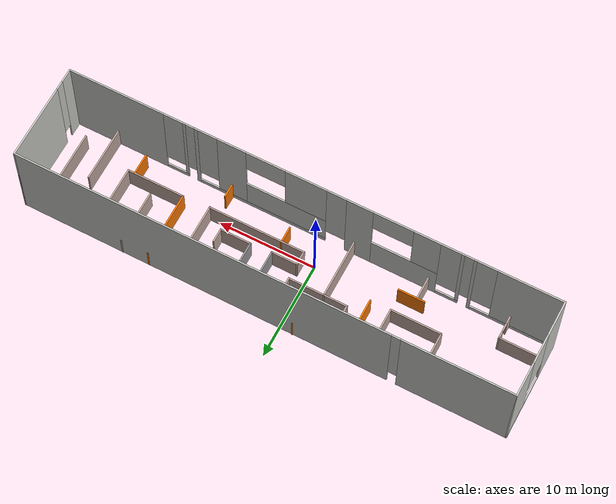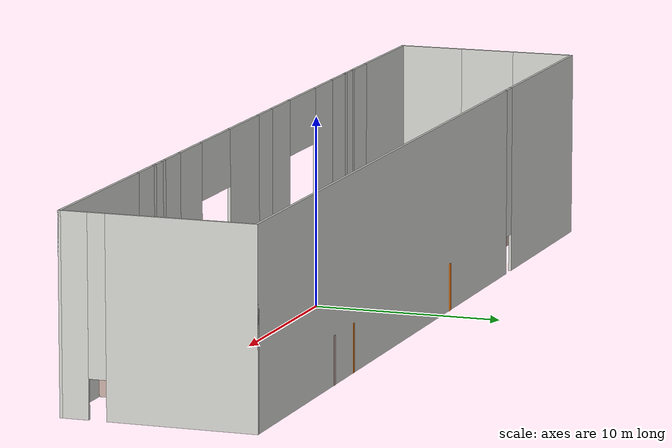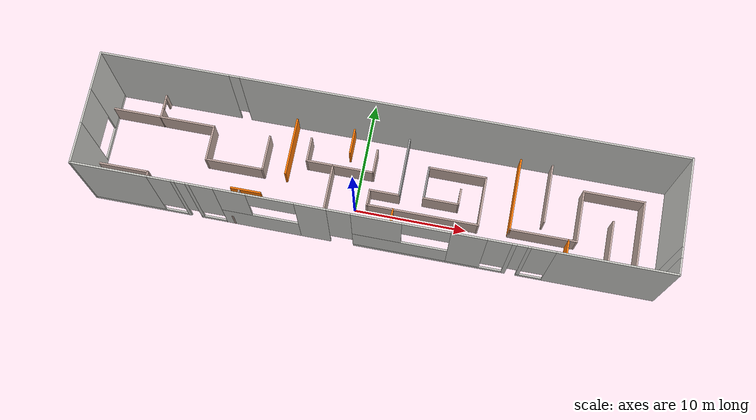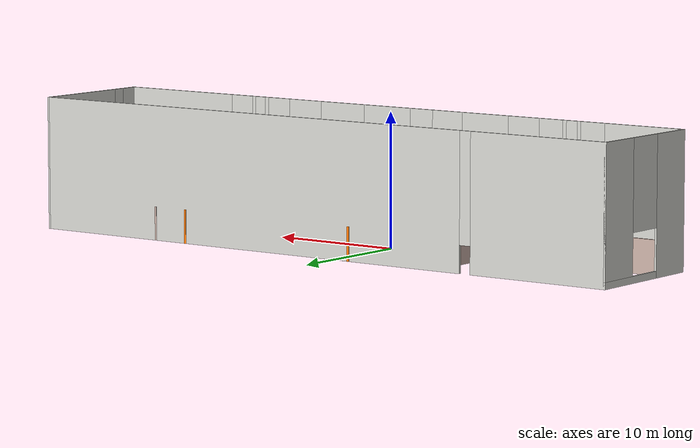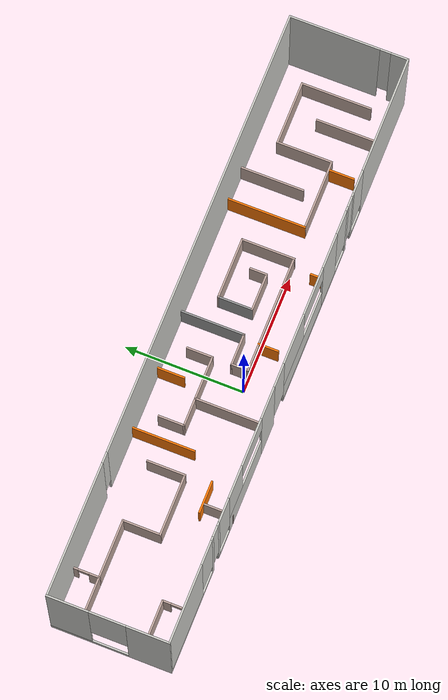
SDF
<?xml version='1.0'?>
<sdf version='1.6'>
  <model name='robot_lab'>
    <pose frame=''>2.0785 1.88305 0 0 -0 0</pose>
    <link name='Wall_0'>
      <pose frame=''>-24.9425 -0.016054 0 0 -0 1.5708</pose>
      <visual name='Wall_0_Visual_0'>
        <pose frame=''>-3.2177 0 5 0 -0 0</pose>
        <geometry>
          <box>
            <size>3.5646 0.15 10</size>
          </box>
        </geometry>
        <material>
          <script>
            <uri>file://media/materials/scripts/gazebo.material</uri>
            <name>Gazebo/CeilingTiled</name>
          </script>
          <ambient>0 0 0 1</ambient>
        </material>
        <meta>
          <layer>0</layer>
        </meta>
      </visual>
      <collision name='Wall_0_Collision_0'>
        <geometry>
          <box>
            <size>3.5646 0.15 10</size>
          </box>
        </geometry>
        <pose frame=''>-3.2177 0 5 0 -0 0</pose>
      </collision>
      <visual name='Wall_0_Visual_1'>
        <pose frame=''>1.7823 0 0.25 0 -0 0</pose>
        <geometry>
          <box>
            <size>6.4354 0.15 0.5</size>
          </box>
        </geometry>
        <material>
          <script>
            <uri>file://media/materials/scripts/gazebo.material</uri>
            <name>Gazebo/CeilingTiled</name>
          </script>
          <ambient>0 0 0 1</ambient>
        </material>
        <meta>
          <layer>0</layer>
        </meta>
      </visual>
      <collision name='Wall_0_Collision_1'>
        <geometry>
          <box>
            <size>6.4354 0.15 0.5</size>
          </box>
        </geometry>
        <pose frame=''>1.7823 0 0.25 0 -0 0</pose>
      </collision>
      <visual name='Wall_0_Visual_2'>
        <pose frame=''>3.2823 0 5.25 0 -0 0</pose>
        <geometry>
          <box>
            <size>3.4354 0.15 9.5</size>
          </box>
        </geometry>
        <material>
          <script>
            <uri>file://media/materials/scripts/gazebo.material</uri>
            <name>Gazebo/CeilingTiled</name>
          </script>
          <ambient>0 0 0 1</ambient>
        </material>
        <meta>
          <layer>0</layer>
        </meta>
      </visual>
      <collision name='Wall_0_Collision_2'>
        <geometry>
          <box>
            <size>3.4354 0.15 9.5</size>
          </box>
        </geometry>
        <pose frame=''>3.2823 0 5.25 0 -0 0</pose>
      </collision>
      <visual name='Wall_0_Visual_3'>
        <pose frame=''>0.064601 0 6.75 0 -0 0</pose>
        <geometry>
          <box>
            <size>3 0.15 6.5</size>
          </box>
        </geometry>
        <material>
          <script>
            <uri>file://media/materials/scripts/gazebo.material</uri>
            <name>Gazebo/CeilingTiled</name>
          </script>
          <ambient>0 0 0 1</ambient>
        </material>
        <meta>
          <layer>0</layer>
        </meta>
      </visual>
      <collision name='Wall_0_Collision_3'>
        <geometry>
          <box>
            <size>3 0.15 6.5</size>
          </box>
        </geometry>
        <pose frame=''>0.064601 0 6.75 0 -0 0</pose>
      </collision>
    </link>
    <link name='Wall_10'>
      <collision name='Wall_10_Collision'>
        <geometry>
          <box>
            <size>6.25 0.15 2.5</size>
          </box>
        </geometry>
        <pose frame=''>0 0 1.25 0 -0 0</pose>
      </collision>
      <visual name='Wall_10_Visual'>
        <pose frame=''>0 0 1.25 0 -0 0</pose>
        <geometry>
          <box>
            <size>6.25 0.15 2.5</size>
          </box>
        </geometry>
        <material>
          <script>
            <uri>file://media/materials/scripts/gazebo.material</uri>
            <name>Gazebo/Grey</name>
          </script>
          <ambient>0.760784 0.662745 0.627451 1</ambient>
        </material>
        <meta>
          <layer>0</layer>
        </meta>
      </visual>
      <pose frame=''>-4.61316 -1.8836 0 0 -0 1.5708</pose>
    </link>
    <link name='Wall_11'>
      <collision name='Wall_11_Collision'>
        <geometry>
          <box>
            <size>2.5 0.15 2.5</size>
          </box>
        </geometry>
        <pose frame=''>0 0 1.25 0 -0 0</pose>
      </collision>
      <visual name='Wall_11_Visual'>
        <pose frame=''>0 0 1.25 0 -0 0</pose>
        <geometry>
          <box>
            <size>2.5 0.15 2.5</size>
          </box>
        </geometry>
        <material>
          <script>
            <uri>file://media/materials/scripts/gazebo.material</uri>
            <name>Gazebo/Grey</name>
          </script>
          <ambient>0.760784 0.662745 0.627451 1</ambient>
        </material>
        <meta>
          <layer>0</layer>
        </meta>
      </visual>
      <pose frame=''>-5.78816 1.16639 0 0 -0 3.14159</pose>
    </link>
    <link name='Wall_12'>
      <collision name='Wall_12_Collision'>
        <geometry>
          <box>
            <size>2.25 0.15 2.5</size>
          </box>
        </geometry>
        <pose frame=''>0 0 1.25 0 -0 0</pose>
      </collision>
      <visual name='Wall_12_Visual'>
        <pose frame=''>0 0 1.25 0 -0 0</pose>
        <geometry>
          <box>
            <size>2.25 0.15 2.5</size>
          </box>
        </geometry>
        <material>
          <script>
            <uri>file://media/materials/scripts/gazebo.material</uri>
            <name>Gazebo/Grey</name>
          </script>
          <ambient>0.760784 0.662745 0.627451 1</ambient>
        </material>
        <meta>
          <layer>0</layer>
        </meta>
      </visual>
      <pose frame=''>-6.96316 2.21639 0 0 -0 1.5708</pose>
    </link>
    <link name='Wall_14'>
      <collision name='Wall_14_Collision'>
        <geometry>
          <box>
            <size>3.75 0.15 2.5</size>
          </box>
        </geometry>
        <pose frame=''>0 0 1.25 0 -0 0</pose>
      </collision>
      <visual name='Wall_14_Visual'>
        <pose frame=''>0 0 1.25 0 -0 0</pose>
        <geometry>
          <box>
            <size>3.75 0.15 2.5</size>
          </box>
        </geometry>
        <material>
          <script>
            <uri>file://media/materials/scripts/gazebo.material</uri>
            <name>Gazebo/Grey</name>
          </script>
          <ambient>0.760784 0.662745 0.627451 1</ambient>
        </material>
        <meta>
          <layer>0</layer>
        </meta>
      </visual>
      <pose frame=''>-2.81316 1.16639 0 0 -0 0</pose>
    </link>
    <link name='Wall_15'>
      <collision name='Wall_15_Collision'>
        <geometry>
          <box>
            <size>2.25 0.15 2.5</size>
          </box>
        </geometry>
        <pose frame=''>0 0 1.25 0 -0 0</pose>
      </collision>
      <visual name='Wall_15_Visual'>
        <pose frame=''>0 0 1.25 0 -0 0</pose>
        <geometry>
          <box>
            <size>2.25 0.15 2.5</size>
          </box>
        </geometry>
        <material>
          <script>
            <uri>file://media/materials/scripts/gazebo.material</uri>
            <name>Gazebo/Grey</name>
          </script>
          <ambient>0.760784 0.662745 0.627451 1</ambient>
        </material>
        <meta>
          <layer>0</layer>
        </meta>
      </visual>
      <pose frame=''>-1.01316 2.21639 0 0 -0 1.5708</pose>
    </link>
    <link name='Wall_17'>
      <collision name='Wall_17_Collision'>
        <geometry>
          <box>
            <size>5.5 0.15 2.5</size>
          </box>
        </geometry>
        <pose frame=''>0 0 1.25 0 -0 0</pose>
      </collision>
      <visual name='Wall_17_Visual'>
        <pose frame=''>0 0 1.25 0 -0 0</pose>
        <geometry>
          <box>
            <size>5.5 0.15 2.5</size>
          </box>
        </geometry>
        <material>
          <script>
            <uri>file://media/materials/scripts/gazebo.material</uri>
            <name>Gazebo/Grey</name>
          </script>
          <ambient>1 1 1 1</ambient>
        </material>
        <meta>
          <layer>0</layer>
        </meta>
      </visual>
      <pose frame=''>1.61129 2.23347 0 0 0 -1.5708</pose>
    </link>
    <link name='Wall_18'>
      <collision name='Wall_18_Collision'>
        <geometry>
          <box>
            <size>2.75 0.15 2.5</size>
          </box>
        </geometry>
        <pose frame=''>0 0 1.25 0 -0 0</pose>
      </collision>
      <visual name='Wall_18_Visual'>
        <pose frame=''>0 0 1.25 0 -0 0</pose>
        <geometry>
          <box>
            <size>2.75 0.15 2.5</size>
          </box>
        </geometry>
        <material>
          <script>
            <uri>file://media/materials/scripts/gazebo.material</uri>
            <name>Gazebo/Grey</name>
          </script>
          <ambient>0.760784 0.662745 0.627451 1</ambient>
        </material>
        <meta>
          <layer>0</layer>
        </meta>
      </visual>
      <pose frame=''>0.311289 -0.441532 0 0 -0 3.14159</pose>
    </link>
    <link name='Wall_19'>
      <collision name='Wall_19_Collision'>
        <geometry>
          <box>
            <size>1.54023 0.15 2.5</size>
          </box>
        </geometry>
        <pose frame=''>0 0 1.25 0 -0 0</pose>
      </collision>
      <visual name='Wall_19_Visual'>
        <pose frame=''>0 0 1.25 0 -0 0</pose>
        <geometry>
          <box>
            <size>1.54023 0.15 2.5</size>
          </box>
        </geometry>
        <material>
          <script>
            <uri>file://media/materials/scripts/gazebo.material</uri>
            <name>Gazebo/Grey</name>
          </script>
          <ambient>0.760784 0.662745 0.627451 1</ambient>
        </material>
        <meta>
          <layer>0</layer>
        </meta>
      </visual>
      <pose frame=''>-0.988711 -1.13664 0 0 0 -1.5708</pose>
    </link>
    <link name='Wall_2'>
      <pose frame=''>0 4.90895 0 0 -0 0</pose>
      <visual name='Wall_2_Visual_0'>
        <pose frame=''>-19.4637 0 5 0 -0 0</pose>
        <geometry>
          <box>
            <size>11.1075 0.15 10</size>
          </box>
        </geometry>
        <material>
          <script>
            <uri>file://media/materials/scripts/gazebo.material</uri>
            <name>Gazebo/CeilingTiled</name>
          </script>
          <ambient>0 0 0 1</ambient>
        </material>
        <meta>
          <layer>0</layer>
        </meta>
      </visual>
      <collision name='Wall_2_Collision_0'>
        <geometry>
          <box>
            <size>11.1075 0.15 10</size>
          </box>
        </geometry>
        <pose frame=''>-19.4637 0 5 0 -0 0</pose>
      </collision>
      <visual name='Wall_2_Visual_1'>
        <pose frame=''>6.00375 0 5 0 -0 0</pose>
        <geometry>
          <box>
            <size>38.0275 0.15 10</size>
          </box>
        </geometry>
        <material>
          <script>
            <uri>file://media/materials/scripts/gazebo.material</uri>
            <name>Gazebo/CeilingTiled</name>
          </script>
          <ambient>0 0 0 1</ambient>
        </material>
        <meta>
          <layer>0</layer>
        </meta>
      </visual>
      <collision name='Wall_2_Collision_1'>
        <geometry>
          <box>
            <size>38.0275 0.15 10</size>
          </box>
        </geometry>
        <pose frame=''>6.00375 0 5 0 -0 0</pose>
      </collision>
      <visual name='Wall_2_Visual_2'>
        <pose frame=''>-13.46 0 6 0 -0 0</pose>
        <geometry>
          <box>
            <size>0.9 0.15 8</size>
          </box>
        </geometry>
        <material>
          <script>
            <uri>file://media/materials/scripts/gazebo.material</uri>
            <name>Gazebo/CeilingTiled</name>
          </script>
          <ambient>0 0 0 1</ambient>
        </material>
        <meta>
          <layer>0</layer>
        </meta>
      </visual>
      <collision name='Wall_2_Collision_2'>
        <geometry>
          <box>
            <size>0.9 0.15 8</size>
          </box>
        </geometry>
        <pose frame=''>-13.46 0 6 0 -0 0</pose>
      </collision>
    </link>
    <link name='Wall_20'>
      <collision name='Wall_20_Collision'>
        <geometry>
          <box>
            <size>10 0.15 2.5</size>
          </box>
        </geometry>
        <pose frame=''>0 0 1.25 0 -0 0</pose>
      </collision>
      <visual name='Wall_20_Visual'>
        <pose frame=''>0 0 1.25 0 -0 0</pose>
        <geometry>
          <box>
            <size>10 0.15 2.5</size>
          </box>
        </geometry>
        <material>
          <script>
            <uri>file://media/materials/scripts/gazebo.material</uri>
            <name>Gazebo/Grey</name>
          </script>
          <ambient>0.760784 0.662745 0.627451 1</ambient>
        </material>
        <meta>
          <layer>0</layer>
        </meta>
      </visual>
      <pose frame=''>3.93629 -1.81164 0 0 -0 0</pose>
    </link>
    <link name='Wall_21'>
      <collision name='Wall_21_Collision'>
        <geometry>
          <box>
            <size>4.54023 0.15 2.5</size>
          </box>
        </geometry>
        <pose frame=''>0 0 1.25 0 -0 0</pose>
      </collision>
      <visual name='Wall_21_Visual'>
        <pose frame=''>0 0 1.25 0 -0 0</pose>
        <geometry>
          <box>
            <size>4.54023 0.15 2.5</size>
          </box>
        </geometry>
        <material>
          <script>
            <uri>file://media/materials/scripts/gazebo.material</uri>
            <name>Gazebo/Grey</name>
          </script>
          <ambient>0.760784 0.662745 0.627451 1</ambient>
        </material>
        <meta>
          <layer>0</layer>
        </meta>
      </visual>
      <pose frame=''>8.86129 0.363354 0 0 -0 1.5708</pose>
    </link>
    <link name='Wall_22'>
      <collision name='Wall_22_Collision'>
        <geometry>
          <box>
            <size>5.25 0.15 2.5</size>
          </box>
        </geometry>
        <pose frame=''>0 0 1.25 0 -0 0</pose>
      </collision>
      <visual name='Wall_22_Visual'>
        <pose frame=''>0 0 1.25 0 -0 0</pose>
        <geometry>
          <box>
            <size>5.25 0.15 2.5</size>
          </box>
        </geometry>
        <material>
          <script>
            <uri>file://media/materials/scripts/gazebo.material</uri>
            <name>Gazebo/Grey</name>
          </script>
          <ambient>0.760784 0.662745 0.627451 1</ambient>
        </material>
        <meta>
          <layer>0</layer>
        </meta>
      </visual>
      <pose frame=''>6.31129 2.55847 0 0 -0 3.14159</pose>
    </link>
    <link name='Wall_23'>
      <collision name='Wall_23_Collision'>
        <geometry>
          <box>
            <size>3 0.15 2.5</size>
          </box>
        </geometry>
        <pose frame=''>0 0 1.25 0 -0 0</pose>
      </collision>
      <visual name='Wall_23_Visual'>
        <pose frame=''>0 0 1.25 0 -0 0</pose>
        <geometry>
          <box>
            <size>3 0.15 2.5</size>
          </box>
        </geometry>
        <material>
          <script>
            <uri>file://media/materials/scripts/gazebo.material</uri>
            <name>Gazebo/Grey</name>
          </script>
          <ambient>1 1 1 1</ambient>
        </material>
        <meta>
          <layer>0</layer>
        </meta>
      </visual>
      <pose frame=''>3.76129 1.13347 0 0 0 -1.5708</pose>
    </link>
    <link name='Wall_24'>
      <collision name='Wall_24_Collision'>
        <geometry>
          <box>
            <size>3.25 0.15 2.5</size>
          </box>
        </geometry>
        <pose frame=''>0 0 1.25 0 -0 0</pose>
      </collision>
      <visual name='Wall_24_Visual'>
        <pose frame=''>0 0 1.25 0 -0 0</pose>
        <geometry>
          <box>
            <size>3.25 0.15 2.5</size>
          </box>
        </geometry>
        <material>
          <script>
            <uri>file://media/materials/scripts/gazebo.material</uri>
            <name>Gazebo/Grey</name>
          </script>
          <ambient>0.760784 0.662745 0.627451 1</ambient>
        </material>
        <meta>
          <layer>0</layer>
        </meta>
      </visual>
      <pose frame=''>5.31129 -0.291532 0 0 -0 0</pose>
    </link>
    <link name='Wall_25'>
      <collision name='Wall_25_Collision'>
        <geometry>
          <box>
            <size>1.5 0.15 2.5</size>
          </box>
        </geometry>
        <pose frame=''>0 0 1.25 0 -0 0</pose>
      </collision>
      <visual name='Wall_25_Visual'>
        <pose frame=''>0 0 1.25 0 -0 0</pose>
        <geometry>
          <box>
            <size>1.5 0.15 2.5</size>
          </box>
        </geometry>
        <material>
          <script>
            <uri>file://media/materials/scripts/gazebo.material</uri>
            <name>Gazebo/Grey</name>
          </script>
          <ambient>0.760784 0.662745 0.627451 1</ambient>
        </material>
        <meta>
          <layer>0</layer>
        </meta>
      </visual>
      <pose frame=''>6.86129 0.383468 0 0 -0 1.5708</pose>
    </link>
    <link name='Wall_27'>
      <pose frame=''>-20.4935 -3.6522 0 0 -0 1.5708</pose>
      <visual name='Wall_27_Visual_0'>
        <pose frame=''>-0.838996 0 1.25 0 -0 0</pose>
        <geometry>
          <box>
            <size>0.822009 0.15 2.5</size>
          </box>
        </geometry>
        <material>
          <script>
            <uri>file://media/materials/scripts/gazebo.material</uri>
            <name>Gazebo/Grey</name>
          </script>
          <ambient>0.760784 0.662745 0.627451 1</ambient>
        </material>
        <meta>
          <layer>0</layer>
        </meta>
      </visual>
      <collision name='Wall_27_Collision_0'>
        <geometry>
          <box>
            <size>0.822009 0.15 2.5</size>
          </box>
        </geometry>
        <pose frame=''>-0.838996 0 1.25 0 -0 0</pose>
      </collision>
      <visual name='Wall_27_Visual_1'>
        <pose frame=''>0.861004 0 1.25 0 -0 0</pose>
        <geometry>
          <box>
            <size>0.777991 0.15 2.5</size>
          </box>
        </geometry>
        <material>
          <script>
            <uri>file://media/materials/scripts/gazebo.material</uri>
            <name>Gazebo/Grey</name>
          </script>
          <ambient>0.760784 0.662745 0.627451 1</ambient>
        </material>
        <meta>
          <layer>0</layer>
        </meta>
      </visual>
      <collision name='Wall_27_Collision_1'>
        <geometry>
          <box>
            <size>0.777991 0.15 2.5</size>
          </box>
        </geometry>
        <pose frame=''>0.861004 0 1.25 0 -0 0</pose>
      </collision>
      <visual name='Wall_27_Visual_2'>
        <pose frame=''>0.022009 0 2.25 0 -0 0</pose>
        <geometry>
          <box>
            <size>0.9 0.15 0.5</size>
          </box>
        </geometry>
        <material>
          <script>
            <uri>file://media/materials/scripts/gazebo.material</uri>
            <name>Gazebo/Grey</name>
          </script>
          <ambient>0.760784 0.662745 0.627451 1</ambient>
        </material>
        <meta>
          <layer>0</layer>
        </meta>
      </visual>
      <collision name='Wall_27_Collision_2'>
        <geometry>
          <box>
            <size>0.9 0.15 0.5</size>
          </box>
        </geometry>
        <pose frame=''>0.022009 0 2.25 0 -0 0</pose>
      </collision>
    </link>
    <link name='Wall_28'>
      <collision name='Wall_28_Collision'>
        <geometry>
          <box>
            <size>4.5 0.15 2.5</size>
          </box>
        </geometry>
        <pose frame=''>0 0 1.25 0 -0 0</pose>
      </collision>
      <visual name='Wall_28_Visual'>
        <pose frame=''>0 0 1.25 0 -0 0</pose>
        <geometry>
          <box>
            <size>4.5 0.15 2.5</size>
          </box>
        </geometry>
        <material>
          <script>
            <uri>file://media/materials/scripts/gazebo.material</uri>
            <name>Gazebo/Grey</name>
          </script>
          <ambient>0.760784 0.662745 0.627451 1</ambient>
        </material>
        <meta>
          <layer>0</layer>
        </meta>
      </visual>
      <pose frame=''>-22.6685 -2.47721 0 0 -0 3.14159</pose>
    </link>
    <link name='Wall_3'>
      <pose frame=''>24.9425 -0.016054 0 0 0 -1.5708</pose>
      <visual name='Wall_3_Visual_0'>
        <pose frame=''>-1.19185 0 5 0 -0 0</pose>
        <geometry>
          <box>
            <size>7.61631 0.15 10</size>
          </box>
        </geometry>
        <material>
          <script>
            <uri>file://media/materials/scripts/gazebo.material</uri>
            <name>Gazebo/CeilingTiled</name>
          </script>
          <ambient>0 0 0 1</ambient>
        </material>
        <meta>
          <layer>0</layer>
        </meta>
      </visual>
      <collision name='Wall_3_Collision_0'>
        <geometry>
          <box>
            <size>7.61631 0.15 10</size>
          </box>
        </geometry>
        <pose frame=''>-1.19185 0 5 0 -0 0</pose>
      </collision>
      <visual name='Wall_3_Visual_1'>
        <pose frame=''>4.25816 0 5 0 -0 0</pose>
        <geometry>
          <box>
            <size>1.48369 0.15 10</size>
          </box>
        </geometry>
        <material>
          <script>
            <uri>file://media/materials/scripts/gazebo.material</uri>
            <name>Gazebo/CeilingTiled</name>
          </script>
          <ambient>0 0 0 1</ambient>
        </material>
        <meta>
          <layer>0</layer>
        </meta>
      </visual>
      <collision name='Wall_3_Collision_1'>
        <geometry>
          <box>
            <size>1.48369 0.15 10</size>
          </box>
        </geometry>
        <pose frame=''>4.25816 0 5 0 -0 0</pose>
      </collision>
      <visual name='Wall_3_Visual_2'>
        <pose frame=''>3.06631 0 6 0 -0 0</pose>
        <geometry>
          <box>
            <size>0.9 0.15 8</size>
          </box>
        </geometry>
        <material>
          <script>
            <uri>file://media/materials/scripts/gazebo.material</uri>
            <name>Gazebo/CeilingTiled</name>
          </script>
          <ambient>0 0 0 1</ambient>
        </material>
        <meta>
          <layer>0</layer>
        </meta>
      </visual>
      <collision name='Wall_3_Collision_2'>
        <geometry>
          <box>
            <size>0.9 0.15 8</size>
          </box>
        </geometry>
        <pose frame=''>3.06631 0 6 0 -0 0</pose>
      </collision>
    </link>
    <link name='Wall_30'>
      <collision name='Wall_30_Collision'>
        <geometry>
          <box>
            <size>4.5 0.15 2.5</size>
          </box>
        </geometry>
        <pose frame=''>0 0 1.25 0 -0 0</pose>
      </collision>
      <visual name='Wall_30_Visual'>
        <pose frame=''>0 0 1.25 0 -0 0</pose>
        <geometry>
          <box>
            <size>4.5 0.15 2.5</size>
          </box>
        </geometry>
        <material>
          <script>
            <uri>file://media/materials/scripts/gazebo.material</uri>
            <name>Gazebo/Grey</name>
          </script>
          <ambient>0.760784 0.662745 0.627451 1</ambient>
        </material>
        <meta>
          <layer>0</layer>
        </meta>
      </visual>
      <pose frame=''>-22.7607 2.72725 0 0 -0 0</pose>
    </link>
    <link name='Wall_31'>
      <pose frame=''>-20.5857 3.77725 0 0 -0 1.5708</pose>
      <visual name='Wall_31_Visual_0'>
        <pose frame=''>-0.674095 0 1.25 0 -0 0</pose>
        <geometry>
          <box>
            <size>0.90181 0.15 2.5</size>
          </box>
        </geometry>
        <material>
          <script>
            <uri>file://media/materials/scripts/gazebo.material</uri>
            <name>Gazebo/Grey</name>
          </script>
          <ambient>0.760784 0.662745 0.627451 1</ambient>
        </material>
        <meta>
          <layer>0</layer>
        </meta>
      </visual>
      <collision name='Wall_31_Collision_0'>
        <geometry>
          <box>
            <size>0.90181 0.15 2.5</size>
          </box>
        </geometry>
        <pose frame=''>-0.674095 0 1.25 0 -0 0</pose>
      </collision>
      <visual name='Wall_31_Visual_1'>
        <pose frame=''>0.900905 0 1.25 0 -0 0</pose>
        <geometry>
          <box>
            <size>0.44819 0.15 2.5</size>
          </box>
        </geometry>
        <material>
          <script>
            <uri>file://media/materials/scripts/gazebo.material</uri>
            <name>Gazebo/Grey</name>
          </script>
          <ambient>0.760784 0.662745 0.627451 1</ambient>
        </material>
        <meta>
          <layer>0</layer>
        </meta>
      </visual>
      <collision name='Wall_31_Collision_1'>
        <geometry>
          <box>
            <size>0.44819 0.15 2.5</size>
          </box>
        </geometry>
        <pose frame=''>0.900905 0 1.25 0 -0 0</pose>
      </collision>
      <visual name='Wall_31_Visual_2'>
        <pose frame=''>0.22681 0 2.25 0 -0 0</pose>
        <geometry>
          <box>
            <size>0.9 0.15 0.5</size>
          </box>
        </geometry>
        <material>
          <script>
            <uri>file://media/materials/scripts/gazebo.material</uri>
            <name>Gazebo/Grey</name>
          </script>
          <ambient>0.760784 0.662745 0.627451 1</ambient>
        </material>
        <meta>
          <layer>0</layer>
        </meta>
      </visual>
      <collision name='Wall_31_Collision_2'>
        <geometry>
          <box>
            <size>0.9 0.15 0.5</size>
          </box>
        </geometry>
        <pose frame=''>0.22681 0 2.25 0 -0 0</pose>
      </collision>
    </link>
    <link name='Wall_33'>
      <collision name='Wall_33_Collision'>
        <geometry>
          <box>
            <size>5 0.15 2.5</size>
          </box>
        </geometry>
        <pose frame=''>0 0 1.25 0 -0 0</pose>
      </collision>
      <visual name='Wall_33_Visual'>
        <pose frame=''>0 0 1.25 0 -0 0</pose>
        <geometry>
          <box>
            <size>5 0.15 2.5</size>
          </box>
        </geometry>
        <material>
          <script>
            <uri>file://media/materials/scripts/gazebo.material</uri>
            <name>Gazebo/Grey</name>
          </script>
          <ambient>0.760784 0.662745 0.627451 1</ambient>
        </material>
        <meta>
          <layer>0</layer>
        </meta>
      </visual>
      <pose frame=''>-18.1607 2.72725 0 0 -0 0</pose>
    </link>
    <link name='Wall_34'>
      <collision name='Wall_34_Collision'>
        <geometry>
          <box>
            <size>3.25 0.15 2.5</size>
          </box>
        </geometry>
        <pose frame=''>0 0 1.25 0 -0 0</pose>
      </collision>
      <visual name='Wall_34_Visual'>
        <pose frame=''>0 0 1.25 0 -0 0</pose>
        <geometry>
          <box>
            <size>3.25 0.15 2.5</size>
          </box>
        </geometry>
        <material>
          <script>
            <uri>file://media/materials/scripts/gazebo.material</uri>
            <name>Gazebo/Grey</name>
          </script>
          <ambient>0.760784 0.662745 0.627451 1</ambient>
        </material>
        <meta>
          <layer>0</layer>
        </meta>
      </visual>
      <pose frame=''>-15.7357 1.17725 0 0 0 -1.5708</pose>
    </link>
    <link name='Wall_35'>
      <collision name='Wall_35_Collision'>
        <geometry>
          <box>
            <size>5.25 0.15 2.5</size>
          </box>
        </geometry>
        <pose frame=''>0 0 1.25 0 -0 0</pose>
      </collision>
      <visual name='Wall_35_Visual'>
        <pose frame=''>0 0 1.25 0 -0 0</pose>
        <geometry>
          <box>
            <size>5.25 0.15 2.5</size>
          </box>
        </geometry>
        <material>
          <script>
            <uri>file://media/materials/scripts/gazebo.material</uri>
            <name>Gazebo/Grey</name>
          </script>
          <ambient>0.760784 0.662745 0.627451 1</ambient>
        </material>
        <meta>
          <layer>0</layer>
        </meta>
      </visual>
      <pose frame=''>-13.1857 -0.372748 0 0 -0 0</pose>
    </link>
    <link name='Wall_36'>
      <collision name='Wall_36_Collision'>
        <geometry>
          <box>
            <size>3.25 0.15 2.5</size>
          </box>
        </geometry>
        <pose frame=''>0 0 1.25 0 -0 0</pose>
      </collision>
      <visual name='Wall_36_Visual'>
        <pose frame=''>0 0 1.25 0 -0 0</pose>
        <geometry>
          <box>
            <size>3.25 0.15 2.5</size>
          </box>
        </geometry>
        <material>
          <script>
            <uri>file://media/materials/scripts/gazebo.material</uri>
            <name>Gazebo/Grey</name>
          </script>
          <ambient>0.760784 0.662745 0.627451 1</ambient>
        </material>
        <meta>
          <layer>0</layer>
        </meta>
      </visual>
      <pose frame=''>-10.6357 1.17725 0 0 -0 1.5708</pose>
    </link>
    <link name='Wall_38'>
      <collision name='Wall_38_Collision'>
        <geometry>
          <box>
            <size>6.75 0.15 2.5</size>
          </box>
        </geometry>
        <pose frame=''>0 0 1.25 0 -0 0</pose>
      </collision>
      <visual name='Wall_38_Visual'>
        <pose frame=''>0 0 1.25 0 -0 0</pose>
        <geometry>
          <box>
            <size>6.75 0.15 2.5</size>
          </box>
        </geometry>
        <material>
          <script>
            <uri>file://media/materials/scripts/gazebo.material</uri>
            <name>Gazebo/Grey</name>
          </script>
          <ambient>0.996078 0.47451 0.0196078 1</ambient>
        </material>
        <meta>
          <layer>0</layer>
        </meta>
      </visual>
      <pose frame=''>11.613 1.63507 0 0 0 -1.5708</pose>
    </link>
    <link name='Wall_39'>
      <collision name='Wall_39_Collision'>
        <geometry>
          <box>
            <size>6 0.15 2.5</size>
          </box>
        </geometry>
        <pose frame=''>0 0 1.25 0 -0 0</pose>
      </collision>
      <visual name='Wall_39_Visual'>
        <pose frame=''>0 0 1.25 0 -0 0</pose>
        <geometry>
          <box>
            <size>6 0.15 2.5</size>
          </box>
        </geometry>
        <material>
          <script>
            <uri>file://media/materials/scripts/gazebo.material</uri>
            <name>Gazebo/Grey</name>
          </script>
          <ambient>0.760784 0.662745 0.627451 1</ambient>
        </material>
        <meta>
          <layer>0</layer>
        </meta>
      </visual>
      <pose frame=''>14.538 -1.66493 0 0 -0 0</pose>
    </link>
    <link name='Wall_4'>
      <pose frame=''>0 -4.94105 0 0 -0 3.14159</pose>
      <visual name='Wall_4_Visual_0'>
        <pose frame=''>-20.0656 0 5 0 -0 0</pose>
        <geometry>
          <box>
            <size>9.9038 0.15 10</size>
          </box>
        </geometry>
        <material>
          <script>
            <uri>file://media/materials/scripts/gazebo.material</uri>
            <name>Gazebo/CeilingTiled</name>
          </script>
          <ambient>0 0 0 1</ambient>
        </material>
        <meta>
          <layer>0</layer>
        </meta>
      </visual>
      <collision name='Wall_4_Collision_0'>
        <geometry>
          <box>
            <size>9.9038 0.15 10</size>
          </box>
        </geometry>
        <pose frame=''>-20.0656 0 5 0 -0 0</pose>
      </collision>
      <visual name='Wall_4_Visual_1'>
        <pose frame=''>-11.733 0 5 0 -0 0</pose>
        <geometry>
          <box>
            <size>0.356365 0.15 10</size>
          </box>
        </geometry>
        <material>
          <script>
            <uri>file://media/materials/scripts/gazebo.material</uri>
            <name>Gazebo/CeilingTiled</name>
          </script>
          <ambient>0 0 0 1</ambient>
        </material>
        <meta>
          <layer>0</layer>
        </meta>
      </visual>
      <collision name='Wall_4_Collision_1'>
        <geometry>
          <box>
            <size>0.356365 0.15 10</size>
          </box>
        </geometry>
        <pose frame=''>-11.733 0 5 0 -0 0</pose>
      </collision>
      <visual name='Wall_4_Visual_2'>
        <pose frame=''>4.95803 0 5 0 -0 0</pose>
        <geometry>
          <box>
            <size>2.66619 0.15 10</size>
          </box>
        </geometry>
        <material>
          <script>
            <uri>file://media/materials/scripts/gazebo.material</uri>
            <name>Gazebo/CeilingTiled</name>
          </script>
          <ambient>0 0 0 1</ambient>
        </material>
        <meta>
          <layer>0</layer>
        </meta>
      </visual>
      <collision name='Wall_4_Collision_2'>
        <geometry>
          <box>
            <size>2.66619 0.15 10</size>
          </box>
        </geometry>
        <pose frame=''>4.95803 0 5 0 -0 0</pose>
      </collision>
      <visual name='Wall_4_Visual_3'>
        <pose frame=''>16.3511 0 5 0 -0 0</pose>
        <geometry>
          <box>
            <size>0.308938 0.15 10</size>
          </box>
        </geometry>
        <material>
          <script>
            <uri>file://media/materials/scripts/gazebo.material</uri>
            <name>Gazebo/CeilingTiled</name>
          </script>
          <ambient>0 0 0 1</ambient>
        </material>
        <meta>
          <layer>0</layer>
        </meta>
      </visual>
      <collision name='Wall_4_Collision_3'>
        <geometry>
          <box>
            <size>0.308938 0.15 10</size>
          </box>
        </geometry>
        <pose frame=''>16.3511 0 5 0 -0 0</pose>
      </collision>
      <visual name='Wall_4_Visual_4'>
        <pose frame=''>-13.9625 0 0.25 0 -0 0</pose>
        <geometry>
          <box>
            <size>2.30248 0.15 0.5</size>
          </box>
        </geometry>
        <material>
          <script>
            <uri>file://media/materials/scripts/gazebo.material</uri>
            <name>Gazebo/CeilingTiled</name>
          </script>
          <ambient>0 0 0 1</ambient>
        </material>
        <meta>
          <layer>0</layer>
        </meta>
      </visual>
      <collision name='Wall_4_Collision_4'>
        <geometry>
          <box>
            <size>2.30248 0.15 0.5</size>
          </box>
        </geometry>
        <pose frame=''>-13.9625 0 0.25 0 -0 0</pose>
      </collision>
      <visual name='Wall_4_Visual_5'>
        <pose frame=''>-4.96496 0 0.25 0 -0 0</pose>
        <geometry>
          <box>
            <size>13.1798 0.15 0.5</size>
          </box>
        </geometry>
        <material>
          <script>
            <uri>file://media/materials/scripts/gazebo.material</uri>
            <name>Gazebo/CeilingTiled</name>
          </script>
          <ambient>0 0 0 1</ambient>
        </material>
        <meta>
          <layer>0</layer>
        </meta>
      </visual>
      <collision name='Wall_4_Collision_5'>
        <geometry>
          <box>
            <size>13.1798 0.15 0.5</size>
          </box>
        </geometry>
        <pose frame=''>-4.96496 0 0.25 0 -0 0</pose>
      </collision>
      <visual name='Wall_4_Visual_6'>
        <pose frame=''>9.6364 0 2 0 -0 0</pose>
        <geometry>
          <box>
            <size>6.69054 0.15 4</size>
          </box>
        </geometry>
        <material>
          <script>
            <uri>file://media/materials/scripts/gazebo.material</uri>
            <name>Gazebo/CeilingTiled</name>
          </script>
          <ambient>0 0 0 1</ambient>
        </material>
        <meta>
          <layer>0</layer>
        </meta>
      </visual>
      <collision name='Wall_4_Collision_6'>
        <geometry>
          <box>
            <size>6.69054 0.15 4</size>
          </box>
        </geometry>
        <pose frame=''>9.6364 0 2 0 -0 0</pose>
      </collision>
      <visual name='Wall_4_Visual_7'>
        <pose frame=''>20.7615 0 0.25 0 -0 0</pose>
        <geometry>
          <box>
            <size>8.51195 0.15 0.5</size>
          </box>
        </geometry>
        <material>
          <script>
            <uri>file://media/materials/scripts/gazebo.material</uri>
            <name>Gazebo/CeilingTiled</name>
          </script>
          <ambient>0 0 0 1</ambient>
        </material>
        <meta>
          <layer>0</layer>
        </meta>
      </visual>
      <collision name='Wall_4_Collision_7'>
        <geometry>
          <box>
            <size>8.51195 0.15 0.5</size>
          </box>
        </geometry>
        <pose frame=''>20.7615 0 0.25 0 -0 0</pose>
      </collision>
      <visual name='Wall_4_Visual_8'>
        <pose frame=''>14.1391 0 0.25 0 -0 0</pose>
        <geometry>
          <box>
            <size>2.31494 0.15 0.5</size>
          </box>
        </geometry>
        <material>
          <script>
            <uri>file://media/materials/scripts/gazebo.material</uri>
            <name>Gazebo/CeilingTiled</name>
          </script>
          <ambient>0 0 0 1</ambient>
        </material>
        <meta>
          <layer>0</layer>
        </meta>
      </visual>
      <collision name='Wall_4_Collision_8'>
        <geometry>
          <box>
            <size>2.31494 0.15 0.5</size>
          </box>
        </geometry>
        <pose frame=''>14.1391 0 0.25 0 -0 0</pose>
      </collision>
      <visual name='Wall_4_Visual_9'>
        <pose frame=''>-12.9625 0 5.25 0 -0 0</pose>
        <geometry>
          <box>
            <size>0.302483 0.15 9.5</size>
          </box>
        </geometry>
        <material>
          <script>
            <uri>file://media/materials/scripts/gazebo.material</uri>
            <name>Gazebo/CeilingTiled</name>
          </script>
          <ambient>0 0 0 1</ambient>
        </material>
        <meta>
          <layer>0</layer>
        </meta>
      </visual>
      <collision name='Wall_4_Collision_9'>
        <geometry>
          <box>
            <size>0.302483 0.15 9.5</size>
          </box>
        </geometry>
        <pose frame=''>-12.9625 0 5.25 0 -0 0</pose>
      </collision>
      <visual name='Wall_4_Visual_10'>
        <pose frame=''>-12.9625 0 5.25 0 -0 0</pose>
        <geometry>
          <box>
            <size>0.302483 0.15 9.5</size>
          </box>
        </geometry>
        <material>
          <script>
            <uri>file://media/materials/scripts/gazebo.material</uri>
            <name>Gazebo/CeilingTiled</name>
          </script>
          <ambient>0 0 0 1</ambient>
        </material>
        <meta>
          <layer>0</layer>
        </meta>
      </visual>
      <collision name='Wall_4_Collision_10'>
        <geometry>
          <box>
            <size>0.302483 0.15 9.5</size>
          </box>
        </geometry>
        <pose frame=''>-12.9625 0 5.25 0 -0 0</pose>
      </collision>
      <visual name='Wall_4_Visual_11'>
        <pose frame=''>-8.07111 0 5.25 0 -0 0</pose>
        <geometry>
          <box>
            <size>2.96749 0.15 9.5</size>
          </box>
        </geometry>
        <material>
          <script>
            <uri>file://media/materials/scripts/gazebo.material</uri>
            <name>Gazebo/CeilingTiled</name>
          </script>
          <ambient>0 0 0 1</ambient>
        </material>
        <meta>
          <layer>0</layer>
        </meta>
      </visual>
      <collision name='Wall_4_Collision_11'>
        <geometry>
          <box>
            <size>2.96749 0.15 9.5</size>
          </box>
        </geometry>
        <pose frame=''>-8.07111 0 5.25 0 -0 0</pose>
      </collision>
      <visual name='Wall_4_Visual_12'>
        <pose frame=''>-8.07111 0 5.25 0 -0 0</pose>
        <geometry>
          <box>
            <size>2.96749 0.15 9.5</size>
          </box>
        </geometry>
        <material>
          <script>
            <uri>file://media/materials/scripts/gazebo.material</uri>
            <name>Gazebo/CeilingTiled</name>
          </script>
          <ambient>0 0 0 1</ambient>
        </material>
        <meta>
          <layer>0</layer>
        </meta>
      </visual>
      <collision name='Wall_4_Collision_12'>
        <geometry>
          <box>
            <size>2.96749 0.15 9.5</size>
          </box>
        </geometry>
        <pose frame=''>-8.07111 0 5.25 0 -0 0</pose>
      </collision>
      <visual name='Wall_4_Visual_13'>
        <pose frame=''>21.7615 0 5.25 0 -0 0</pose>
        <geometry>
          <box>
            <size>6.51195 0.15 9.5</size>
          </box>
        </geometry>
        <material>
          <script>
            <uri>file://media/materials/scripts/gazebo.material</uri>
            <name>Gazebo/CeilingTiled</name>
          </script>
          <ambient>0 0 0 1</ambient>
        </material>
        <meta>
          <layer>0</layer>
        </meta>
      </visual>
      <collision name='Wall_4_Collision_13'>
        <geometry>
          <box>
            <size>6.51195 0.15 9.5</size>
          </box>
        </geometry>
        <pose frame=''>21.7615 0 5.25 0 -0 0</pose>
      </collision>
      <visual name='Wall_4_Visual_14'>
        <pose frame=''>15.1391 0 5.25 0 -0 0</pose>
        <geometry>
          <box>
            <size>0.314943 0.15 9.5</size>
          </box>
        </geometry>
        <material>
          <script>
            <uri>file://media/materials/scripts/gazebo.material</uri>
            <name>Gazebo/CeilingTiled</name>
          </script>
          <ambient>0 0 0 1</ambient>
        </material>
        <meta>
          <layer>0</layer>
        </meta>
      </visual>
      <collision name='Wall_4_Collision_14'>
        <geometry>
          <box>
            <size>0.314943 0.15 9.5</size>
          </box>
        </geometry>
        <pose frame=''>15.1391 0 5.25 0 -0 0</pose>
      </collision>
      <visual name='Wall_4_Visual_15'>
        <pose frame=''>15.1391 0 5.25 0 -0 0</pose>
        <geometry>
          <box>
            <size>0.314943 0.15 9.5</size>
          </box>
        </geometry>
        <material>
          <script>
            <uri>file://media/materials/scripts/gazebo.material</uri>
            <name>Gazebo/CeilingTiled</name>
          </script>
          <ambient>0 0 0 1</ambient>
        </material>
        <meta>
          <layer>0</layer>
        </meta>
      </visual>
      <collision name='Wall_4_Collision_15'>
        <geometry>
          <box>
            <size>0.314943 0.15 9.5</size>
          </box>
        </geometry>
        <pose frame=''>15.1391 0 5.25 0 -0 0</pose>
      </collision>
      <visual name='Wall_4_Visual_16'>
        <pose frame=''>-2.48121 0 2.25 0 -0 0</pose>
        <geometry>
          <box>
            <size>8.21229 0.15 3.5</size>
          </box>
        </geometry>
        <material>
          <script>
            <uri>file://media/materials/scripts/gazebo.material</uri>
            <name>Gazebo/CeilingTiled</name>
          </script>
          <ambient>0 0 0 1</ambient>
        </material>
        <meta>
          <layer>0</layer>
        </meta>
      </visual>
      <collision name='Wall_4_Collision_16'>
        <geometry>
          <box>
            <size>8.21229 0.15 3.5</size>
          </box>
        </geometry>
        <pose frame=''>-2.48121 0 2.25 0 -0 0</pose>
      </collision>
      <visual name='Wall_4_Visual_17'>
        <pose frame=''>-2.48121 0 2.25 0 -0 0</pose>
        <geometry>
          <box>
            <size>8.21229 0.15 3.5</size>
          </box>
        </geometry>
        <material>
          <script>
            <uri>file://media/materials/scripts/gazebo.material</uri>
            <name>Gazebo/CeilingTiled</name>
          </script>
          <ambient>0 0 0 1</ambient>
        </material>
        <meta>
          <layer>0</layer>
        </meta>
      </visual>
      <collision name='Wall_4_Collision_17'>
        <geometry>
          <box>
            <size>8.21229 0.15 3.5</size>
          </box>
        </geometry>
        <pose frame=''>-2.48121 0 2.25 0 -0 0</pose>
      </collision>
      <visual name='Wall_4_Visual_18'>
        <pose frame=''>-14.1137 0 6 0 -0 0</pose>
        <geometry>
          <box>
            <size>2 0.15 8</size>
          </box>
        </geometry>
        <material>
          <script>
            <uri>file://media/materials/scripts/gazebo.material</uri>
            <name>Gazebo/CeilingTiled</name>
          </script>
          <ambient>0 0 0 1</ambient>
        </material>
        <meta>
          <layer>0</layer>
        </meta>
      </visual>
      <collision name='Wall_4_Collision_18'>
        <geometry>
          <box>
            <size>2 0.15 8</size>
          </box>
        </geometry>
        <pose frame=''>-14.1137 0 6 0 -0 0</pose>
      </collision>
      <visual name='Wall_4_Visual_19'>
        <pose frame=''>-10.5549 0 6 0 -0 0</pose>
        <geometry>
          <box>
            <size>2 0.15 8</size>
          </box>
        </geometry>
        <material>
          <script>
            <uri>file://media/materials/scripts/gazebo.material</uri>
            <name>Gazebo/CeilingTiled</name>
          </script>
          <ambient>0 0 0 1</ambient>
        </material>
        <meta>
          <layer>0</layer>
        </meta>
      </visual>
      <collision name='Wall_4_Collision_19'>
        <geometry>
          <box>
            <size>2 0.15 8</size>
          </box>
        </geometry>
        <pose frame=''>-10.5549 0 6 0 -0 0</pose>
      </collision>
      <visual name='Wall_4_Visual_20'>
        <pose frame=''>17.5056 0 6 0 -0 0</pose>
        <geometry>
          <box>
            <size>2 0.15 8</size>
          </box>
        </geometry>
        <material>
          <script>
            <uri>file://media/materials/scripts/gazebo.material</uri>
            <name>Gazebo/CeilingTiled</name>
          </script>
          <ambient>0 0 0 1</ambient>
        </material>
        <meta>
          <layer>0</layer>
        </meta>
      </visual>
      <collision name='Wall_4_Collision_20'>
        <geometry>
          <box>
            <size>2 0.15 8</size>
          </box>
        </geometry>
        <pose frame=''>17.5056 0 6 0 -0 0</pose>
      </collision>
      <visual name='Wall_4_Visual_21'>
        <pose frame=''>13.9817 0 6 0 -0 0</pose>
        <geometry>
          <box>
            <size>2 0.15 8</size>
          </box>
        </geometry>
        <material>
          <script>
            <uri>file://media/materials/scripts/gazebo.material</uri>
            <name>Gazebo/CeilingTiled</name>
          </script>
          <ambient>0 0 0 1</ambient>
        </material>
        <meta>
          <layer>0</layer>
        </meta>
      </visual>
      <collision name='Wall_4_Collision_21'>
        <geometry>
          <box>
            <size>2 0.15 8</size>
          </box>
        </geometry>
        <pose frame=''>13.9817 0 6 0 -0 0</pose>
      </collision>
      <visual name='Wall_4_Visual_22'>
        <pose frame=''>-12.3612 0 6 0 -0 0</pose>
        <geometry>
          <box>
            <size>0.9 0.15 8</size>
          </box>
        </geometry>
        <material>
          <script>
            <uri>file://media/materials/scripts/gazebo.material</uri>
            <name>Gazebo/CeilingTiled</name>
          </script>
          <ambient>0 0 0 1</ambient>
        </material>
        <meta>
          <layer>0</layer>
        </meta>
      </visual>
      <collision name='Wall_4_Collision_22'>
        <geometry>
          <box>
            <size>0.9 0.15 8</size>
          </box>
        </geometry>
        <pose frame=''>-12.3612 0 6 0 -0 0</pose>
      </collision>
      <visual name='Wall_4_Visual_23'>
        <pose frame=''>-12.3612 0 6 0 -0 0</pose>
        <geometry>
          <box>
            <size>0.9 0.15 8</size>
          </box>
        </geometry>
        <material>
          <script>
            <uri>file://media/materials/scripts/gazebo.material</uri>
            <name>Gazebo/CeilingTiled</name>
          </script>
          <ambient>0 0 0 1</ambient>
        </material>
        <meta>
          <layer>0</layer>
        </meta>
      </visual>
      <collision name='Wall_4_Collision_23'>
        <geometry>
          <box>
            <size>0.9 0.15 8</size>
          </box>
        </geometry>
        <pose frame=''>-12.3612 0 6 0 -0 0</pose>
      </collision>
      <visual name='Wall_4_Visual_24'>
        <pose frame=''>15.7466 0 6 0 -0 0</pose>
        <geometry>
          <box>
            <size>0.9 0.15 8</size>
          </box>
        </geometry>
        <material>
          <script>
            <uri>file://media/materials/scripts/gazebo.material</uri>
            <name>Gazebo/CeilingTiled</name>
          </script>
          <ambient>0 0 0 1</ambient>
        </material>
        <meta>
          <layer>0</layer>
        </meta>
      </visual>
      <collision name='Wall_4_Collision_24'>
        <geometry>
          <box>
            <size>0.9 0.15 8</size>
          </box>
        </geometry>
        <pose frame=''>15.7466 0 6 0 -0 0</pose>
      </collision>
      <visual name='Wall_4_Visual_25'>
        <pose frame=''>15.7466 0 6 0 -0 0</pose>
        <geometry>
          <box>
            <size>0.9 0.15 8</size>
          </box>
        </geometry>
        <material>
          <script>
            <uri>file://media/materials/scripts/gazebo.material</uri>
            <name>Gazebo/CeilingTiled</name>
          </script>
          <ambient>0 0 0 1</ambient>
        </material>
        <meta>
          <layer>0</layer>
        </meta>
      </visual>
      <collision name='Wall_4_Collision_25'>
        <geometry>
          <box>
            <size>0.9 0.15 8</size>
          </box>
        </geometry>
        <pose frame=''>15.7466 0 6 0 -0 0</pose>
      </collision>
      <visual name='Wall_4_Visual_26'>
        <pose frame=''>2.62493 0 6 0 -0 0</pose>
        <geometry>
          <box>
            <size>2 0.15 8</size>
          </box>
        </geometry>
        <material>
          <script>
            <uri>file://media/materials/scripts/gazebo.material</uri>
            <name>Gazebo/CeilingTiled</name>
          </script>
          <ambient>0 0 0 1</ambient>
        </material>
        <meta>
          <layer>0</layer>
        </meta>
      </visual>
      <collision name='Wall_4_Collision_26'>
        <geometry>
          <box>
            <size>2 0.15 8</size>
          </box>
        </geometry>
        <pose frame=''>2.62493 0 6 0 -0 0</pose>
      </collision>
      <visual name='Wall_4_Visual_27'>
        <pose frame=''>2.62493 0 6 0 -0 0</pose>
        <geometry>
          <box>
            <size>2 0.15 8</size>
          </box>
        </geometry>
        <material>
          <script>
            <uri>file://media/materials/scripts/gazebo.material</uri>
            <name>Gazebo/CeilingTiled</name>
          </script>
          <ambient>0 0 0 1</ambient>
        </material>
        <meta>
          <layer>0</layer>
        </meta>
      </visual>
      <collision name='Wall_4_Collision_27'>
        <geometry>
          <box>
            <size>2 0.15 8</size>
          </box>
        </geometry>
        <pose frame=''>2.62493 0 6 0 -0 0</pose>
      </collision>
      <visual name='Wall_4_Visual_28'>
        <pose frame=''>11.6364 0 7 0 -0 0</pose>
        <geometry>
          <box>
            <size>2.69054 0.15 6</size>
          </box>
        </geometry>
        <material>
          <script>
            <uri>file://media/materials/scripts/gazebo.material</uri>
            <name>Gazebo/CeilingTiled</name>
          </script>
          <ambient>0 0 0 1</ambient>
        </material>
        <meta>
          <layer>0</layer>
        </meta>
      </visual>
      <collision name='Wall_4_Collision_28'>
        <geometry>
          <box>
            <size>2.69054 0.15 6</size>
          </box>
        </geometry>
        <pose frame=''>11.6364 0 7 0 -0 0</pose>
      </collision>
      <visual name='Wall_4_Visual_29'>
        <pose frame=''>-0.481213 0 7 0 -0 0</pose>
        <geometry>
          <box>
            <size>4.2123 0.15 6</size>
          </box>
        </geometry>
        <material>
          <script>
            <uri>file://media/materials/scripts/gazebo.material</uri>
            <name>Gazebo/CeilingTiled</name>
          </script>
          <ambient>0 0 0 1</ambient>
        </material>
        <meta>
          <layer>0</layer>
        </meta>
      </visual>
      <collision name='Wall_4_Collision_29'>
        <geometry>
          <box>
            <size>4.2123 0.15 6</size>
          </box>
        </geometry>
        <pose frame=''>-0.481213 0 7 0 -0 0</pose>
      </collision>
      <visual name='Wall_4_Visual_30'>
        <pose frame=''>-0.481213 0 7 0 -0 0</pose>
        <geometry>
          <box>
            <size>4.2123 0.15 6</size>
          </box>
        </geometry>
        <material>
          <script>
            <uri>file://media/materials/scripts/gazebo.material</uri>
            <name>Gazebo/CeilingTiled</name>
          </script>
          <ambient>0 0 0 1</ambient>
        </material>
        <meta>
          <layer>0</layer>
        </meta>
      </visual>
      <collision name='Wall_4_Collision_30'>
        <geometry>
          <box>
            <size>4.2123 0.15 6</size>
          </box>
        </geometry>
        <pose frame=''>-0.481213 0 7 0 -0 0</pose>
      </collision>
      <visual name='Wall_4_Visual_31'>
        <pose frame=''>-0.481213 0 7 0 -0 0</pose>
        <geometry>
          <box>
            <size>4.2123 0.15 6</size>
          </box>
        </geometry>
        <material>
          <script>
            <uri>file://media/materials/scripts/gazebo.material</uri>
            <name>Gazebo/CeilingTiled</name>
          </script>
          <ambient>0 0 0 1</ambient>
        </material>
        <meta>
          <layer>0</layer>
        </meta>
      </visual>
      <collision name='Wall_4_Collision_31'>
        <geometry>
          <box>
            <size>4.2123 0.15 6</size>
          </box>
        </geometry>
        <pose frame=''>-0.481213 0 7 0 -0 0</pose>
      </collision>
      <visual name='Wall_4_Visual_32'>
        <pose frame=''>-0.481213 0 7 0 -0 0</pose>
        <geometry>
          <box>
            <size>4.2123 0.15 6</size>
          </box>
        </geometry>
        <material>
          <script>
            <uri>file://media/materials/scripts/gazebo.material</uri>
            <name>Gazebo/CeilingTiled</name>
          </script>
          <ambient>0 0 0 1</ambient>
        </material>
        <meta>
          <layer>0</layer>
        </meta>
      </visual>
      <collision name='Wall_4_Collision_32'>
        <geometry>
          <box>
            <size>4.2123 0.15 6</size>
          </box>
        </geometry>
        <pose frame=''>-0.481213 0 7 0 -0 0</pose>
      </collision>
      <visual name='Wall_4_Visual_33'>
        <pose frame=''>8.29113 0 8.5 0 -0 0</pose>
        <geometry>
          <box>
            <size>4 0.15 3</size>
          </box>
        </geometry>
        <material>
          <script>
            <uri>file://media/materials/scripts/gazebo.material</uri>
            <name>Gazebo/CeilingTiled</name>
          </script>
          <ambient>0 0 0 1</ambient>
        </material>
        <meta>
          <layer>0</layer>
        </meta>
      </visual>
      <collision name='Wall_4_Collision_33'>
        <geometry>
          <box>
            <size>4 0.15 3</size>
          </box>
        </geometry>
        <pose frame=''>8.29113 0 8.5 0 -0 0</pose>
      </collision>
      <visual name='Wall_4_Visual_34'>
        <pose frame=''>-4.58736 0 8.5 0 -0 0</pose>
        <geometry>
          <box>
            <size>4 0.15 3</size>
          </box>
        </geometry>
        <material>
          <script>
            <uri>file://media/materials/scripts/gazebo.material</uri>
            <name>Gazebo/CeilingTiled</name>
          </script>
          <ambient>0 0 0 1</ambient>
        </material>
        <meta>
          <layer>0</layer>
        </meta>
      </visual>
      <collision name='Wall_4_Collision_34'>
        <geometry>
          <box>
            <size>4 0.15 3</size>
          </box>
        </geometry>
        <pose frame=''>-4.58736 0 8.5 0 -0 0</pose>
      </collision>
      <visual name='Wall_4_Visual_35'>
        <pose frame=''>-4.58736 0 8.5 0 -0 0</pose>
        <geometry>
          <box>
            <size>4 0.15 3</size>
          </box>
        </geometry>
        <material>
          <script>
            <uri>file://media/materials/scripts/gazebo.material</uri>
            <name>Gazebo/CeilingTiled</name>
          </script>
          <ambient>0 0 0 1</ambient>
        </material>
        <meta>
          <layer>0</layer>
        </meta>
      </visual>
      <collision name='Wall_4_Collision_35'>
        <geometry>
          <box>
            <size>4 0.15 3</size>
          </box>
        </geometry>
        <pose frame=''>-4.58736 0 8.5 0 -0 0</pose>
      </collision>
    </link>
    <link name='Wall_40'>
      <collision name='Wall_40_Collision'>
        <geometry>
          <box>
            <size>4.75 0.15 2.5</size>
          </box>
        </geometry>
        <pose frame=''>0 0 1.25 0 -0 0</pose>
      </collision>
      <visual name='Wall_40_Visual'>
        <pose frame=''>0 0 1.25 0 -0 0</pose>
        <geometry>
          <box>
            <size>4.75 0.15 2.5</size>
          </box>
        </geometry>
        <material>
          <script>
            <uri>file://media/materials/scripts/gazebo.material</uri>
            <name>Gazebo/Grey</name>
          </script>
          <ambient>0.760784 0.662745 0.627451 1</ambient>
        </material>
        <meta>
          <layer>0</layer>
        </meta>
      </visual>
      <pose frame=''>17.463 0.635068 0 0 -0 1.5708</pose>
    </link>
    <link name='Wall_41'>
      <collision name='Wall_41_Collision'>
        <geometry>
          <box>
            <size>5.5 0.15 2.5</size>
          </box>
        </geometry>
        <pose frame=''>0 0 1.25 0 -0 0</pose>
      </collision>
      <visual name='Wall_41_Visual'>
        <pose frame=''>0 0 1.25 0 -0 0</pose>
        <geometry>
          <box>
            <size>5.5 0.15 2.5</size>
          </box>
        </geometry>
        <material>
          <script>
            <uri>file://media/materials/scripts/gazebo.material</uri>
            <name>Gazebo/Grey</name>
          </script>
          <ambient>0.760784 0.662745 0.627451 1</ambient>
        </material>
        <meta>
          <layer>0</layer>
        </meta>
      </visual>
      <pose frame=''>20.138 2.93507 0 0 -0 0</pose>
    </link>
    <link name='Wall_42'>
      <collision name='Wall_42_Collision'>
        <geometry>
          <box>
            <size>6 0.15 2.5</size>
          </box>
        </geometry>
        <pose frame=''>0 0 1.25 0 -0 0</pose>
      </collision>
      <visual name='Wall_42_Visual'>
        <pose frame=''>0 0 1.25 0 -0 0</pose>
        <geometry>
          <box>
            <size>6 0.15 2.5</size>
          </box>
        </geometry>
        <material>
          <script>
            <uri>file://media/materials/scripts/gazebo.material</uri>
            <name>Gazebo/Grey</name>
          </script>
          <ambient>0.760784 0.662745 0.627451 1</ambient>
        </material>
        <meta>
          <layer>0</layer>
        </meta>
      </visual>
      <pose frame=''>22.813 0.010068 0 0 0 -1.5708</pose>
    </link>
    <link name='Wall_44'>
      <collision name='Wall_44_Collision'>
        <geometry>
          <box>
            <size>1.5 0.15 2.5</size>
          </box>
        </geometry>
        <pose frame=''>0 0 1.25 0 -0 0</pose>
      </collision>
      <visual name='Wall_44_Visual'>
        <pose frame=''>0 0 1.25 0 -0 0</pose>
        <geometry>
          <box>
            <size>1.5 0.15 2.5</size>
          </box>
        </geometry>
        <material>
          <script>
            <uri>file://media/materials/scripts/gazebo.material</uri>
            <name>Gazebo/Grey</name>
          </script>
          <ambient>0.996078 0.47451 0.0196078 1</ambient>
        </material>
        <meta>
          <layer>0</layer>
        </meta>
      </visual>
      <pose frame=''>8.15494 -4.2054 0 0 -0 1.5708</pose>
    </link>
    <link name='Wall_46'>
      <collision name='Wall_46_Collision'>
        <geometry>
          <box>
            <size>5.75 0.15 2.5</size>
          </box>
        </geometry>
        <pose frame=''>0 0 1.25 0 -0 0</pose>
      </collision>
      <visual name='Wall_46_Visual'>
        <pose frame=''>0 0 1.25 0 -0 0</pose>
        <geometry>
          <box>
            <size>5.75 0.15 2.5</size>
          </box>
        </geometry>
        <material>
          <script>
            <uri>file://media/materials/scripts/gazebo.material</uri>
            <name>Gazebo/Grey</name>
          </script>
          <ambient>0.760784 0.662745 0.627451 1</ambient>
        </material>
        <meta>
          <layer>0</layer>
        </meta>
      </visual>
      <pose frame=''>20.3644 -2.10701 0 0 -0 1.5708</pose>
    </link>
    <link name='Wall_48'>
      <collision name='Wall_48_Collision'>
        <geometry>
          <box>
            <size>5.5 0.15 2.5</size>
          </box>
        </geometry>
        <pose frame=''>0 0 1.25 0 -0 0</pose>
      </collision>
      <visual name='Wall_48_Visual'>
        <pose frame=''>0 0 1.25 0 -0 0</pose>
        <geometry>
          <box>
            <size>5.5 0.15 2.5</size>
          </box>
        </geometry>
        <material>
          <script>
            <uri>file://media/materials/scripts/gazebo.material</uri>
            <name>Gazebo/Grey</name>
          </script>
          <ambient>0.760784 0.662745 0.627451 1</ambient>
        </material>
        <meta>
          <layer>0</layer>
        </meta>
      </visual>
      <pose frame=''>14.4326 2.26007 0 0 0 -1.5708</pose>
    </link>
    <link name='Wall_51'>
      <collision name='Wall_51_Collision'>
        <geometry>
          <box>
            <size>2.75 0.15 2.5</size>
          </box>
        </geometry>
        <pose frame=''>0 0 1.25 0 -0 0</pose>
      </collision>
      <visual name='Wall_51_Visual'>
        <pose frame=''>0 0 1.25 0 -0 0</pose>
        <geometry>
          <box>
            <size>2.75 0.15 2.5</size>
          </box>
        </geometry>
        <material>
          <script>
            <uri>file://media/materials/scripts/gazebo.material</uri>
            <name>Gazebo/Grey</name>
          </script>
          <ambient>0.996078 0.47451 0.0196078 1</ambient>
        </material>
        <meta>
          <layer>0</layer>
        </meta>
      </visual>
      <pose frame=''>-11.6656 -2.51299 0 0 -0 0</pose>
    </link>
    <link name='Wall_53'>
      <collision name='Wall_53_Collision'>
        <geometry>
          <box>
            <size>2.5 0.15 2.5</size>
          </box>
        </geometry>
        <pose frame=''>0 0 1.25 0 -0 0</pose>
      </collision>
      <visual name='Wall_53_Visual'>
        <pose frame=''>0 0 1.25 0 -0 0</pose>
        <geometry>
          <box>
            <size>2.5 0.15 2.5</size>
          </box>
        </geometry>
        <material>
          <script>
            <uri>file://media/materials/scripts/gazebo.material</uri>
            <name>Gazebo/Grey</name>
          </script>
          <ambient>0.996078 0.47451 0.0196078 1</ambient>
        </material>
        <meta>
          <layer>0</layer>
        </meta>
      </visual>
      <pose frame=''>-3.36295 3.78667 0 0 0 -1.5708</pose>
    </link>
    <link name='Wall_55'>
      <collision name='Wall_55_Collision'>
        <geometry>
          <box>
            <size>1.75 0.15 2.5</size>
          </box>
        </geometry>
        <pose frame=''>0 0 1.25 0 -0 0</pose>
      </collision>
      <visual name='Wall_55_Visual'>
        <pose frame=''>0 0 1.25 0 -0 0</pose>
        <geometry>
          <box>
            <size>1.75 0.15 2.5</size>
          </box>
        </geometry>
        <material>
          <script>
            <uri>file://media/materials/scripts/gazebo.material</uri>
            <name>Gazebo/Grey</name>
          </script>
          <ambient>0.996078 0.47451 0.0196078 1</ambient>
        </material>
        <meta>
          <layer>0</layer>
        </meta>
      </visual>
      <pose frame=''>1.3226 -2.59843 0 0 0 -1.5708</pose>
    </link>
    <link name='Wall_57'>
      <collision name='Wall_57_Collision'>
        <geometry>
          <box>
            <size>2.25 0.15 2.5</size>
          </box>
        </geometry>
        <pose frame=''>0 0 1.25 0 -0 0</pose>
      </collision>
      <visual name='Wall_57_Visual'>
        <pose frame=''>0 0 1.25 0 -0 0</pose>
        <geometry>
          <box>
            <size>2.25 0.15 2.5</size>
          </box>
        </geometry>
        <material>
          <script>
            <uri>file://media/materials/scripts/gazebo.material</uri>
            <name>Gazebo/Grey</name>
          </script>
          <ambient>0.996078 0.47451 0.0196078 1</ambient>
        </material>
        <meta>
          <layer>0</layer>
        </meta>
      </visual>
      <pose frame=''>16.782 -2.73528 0 0 -0 1.5708</pose>
    </link>
    <link name='Wall_6'>
      <collision name='Wall_6_Collision'>
        <geometry>
          <box>
            <size>2.5 0.15 2.5</size>
          </box>
        </geometry>
        <pose frame=''>0 0 1.25 0 -0 0</pose>
      </collision>
      <visual name='Wall_6_Visual'>
        <pose frame=''>0 0 1.25 0 -0 0</pose>
        <geometry>
          <box>
            <size>2.5 0.15 2.5</size>
          </box>
        </geometry>
        <material>
          <script>
            <uri>file://media/materials/scripts/gazebo.material</uri>
            <name>Gazebo/Grey</name>
          </script>
          <ambient>0.760784 0.662745 0.627451 1</ambient>
        </material>
        <meta>
          <layer>0</layer>
        </meta>
      </visual>
      <pose frame=''>-12.2373 -3.78667 0 0 0 -1.5708</pose>
    </link>
    <link name='Wall_8'>
      <collision name='Wall_8_Collision'>
        <geometry>
          <box>
            <size>5.25 0.15 2.5</size>
          </box>
        </geometry>
        <pose frame=''>0 0 1.25 0 -0 0</pose>
      </collision>
      <visual name='Wall_8_Visual'>
        <pose frame=''>0 0 1.25 0 -0 0</pose>
        <geometry>
          <box>
            <size>5.25 0.15 2.5</size>
          </box>
        </geometry>
        <material>
          <script>
            <uri>file://media/materials/scripts/gazebo.material</uri>
            <name>Gazebo/Grey</name>
          </script>
          <ambient>0.996078 0.47451 0.0196078 1</ambient>
        </material>
        <meta>
          <layer>0</layer>
        </meta>
      </visual>
      <pose frame=''>-8.57659 2.22547 0 0 0 -1.5708</pose>
    </link>
    <static>1</static>
  </model>
</sdf>
